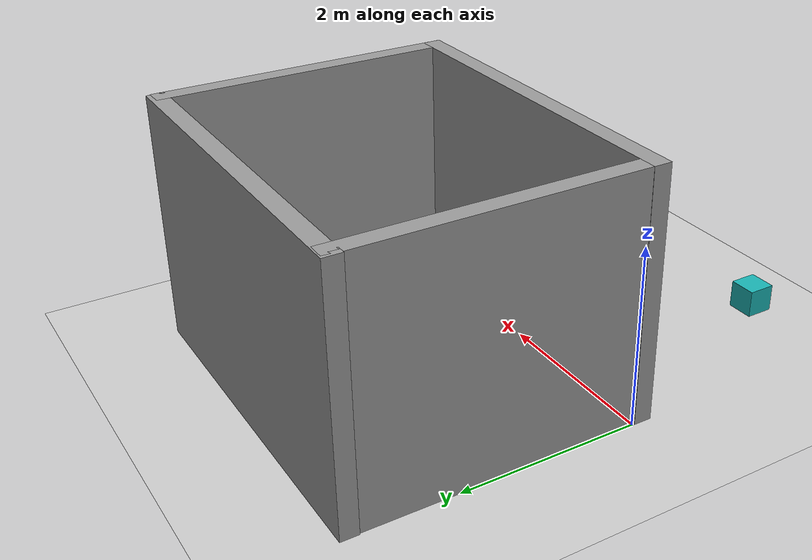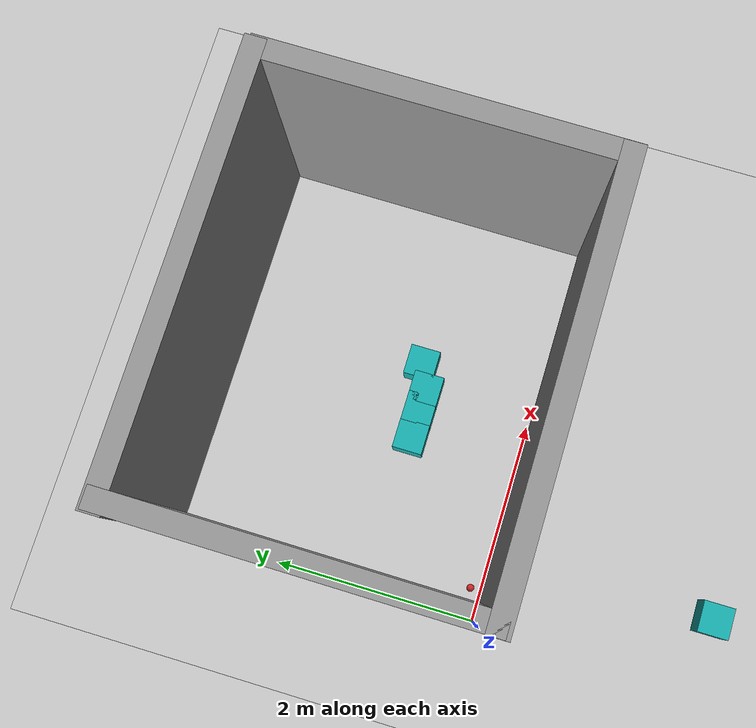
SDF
<sdf version="1.7">
 <world name="default">
  <scene><ambient>0.4 0.4 0.4 1</ambient><background>0.7 0.7 0.7 1</background><shadows>1</shadows></scene>
  <light name="sun" type="directional">
   <pose>0 0 10 0 -0 0</pose>
   <diffuse>0.8 0.8 0.8 1</diffuse>
   <specular>0.2 0.2 0.2 1</specular>
   <attenuation>
    <range>1000</range>
    <constant>0.9</constant>
    <linear>0.01</linear>
    <quadratic>0.001</quadratic>
   </attenuation>
   <direction>-0.5 0.1 -0.9</direction>
   <spot><inner_angle>0</inner_angle><outer_angle>0</outer_angle><falloff>0</falloff></spot>
  </light>
  <model name="ground_plane">
   <static>1</static>
   <link name="link">
    <collision name="collision">
     <geometry><plane><normal>0 0 1</normal><size>100 100</size></plane></geometry>
     <surface><friction><ode><mu>100</mu><mu2>50</mu2></ode></friction></surface>
    </collision>
    <visual name="visual">
     <cast_shadows>0</cast_shadows>
     <geometry><plane><normal>0 0 1</normal><size>100 100</size></plane></geometry>
     <material>
      <script><uri>file://media/materials/scripts/gazebo.material</uri><name>Gazebo/Grey</name></script>
     </material>
    </visual>
   </link>
  </model>
  <physics name="default_physics" default="0" type="ode">
   <real_time_update_rate>1000</real_time_update_rate>
   <max_step_size>0.001</max_step_size>
   <real_time_factor>1</real_time_factor>
   <ode>
    <solver>
     <type>quick</type>
     <iters>150</iters>
     <precon_iters>0</precon_iters>
     <sor>1.4</sor>
     <use_dynamic_moi_rescaling>1</use_dynamic_moi_rescaling>
    </solver>
    <constraints>
     <cfm>1e-05</cfm>
     <erp>0.2</erp>
     <contact_max_correcting_vel>2000</contact_max_correcting_vel>
     <contact_surface_layer>0.01</contact_surface_layer>
    </constraints>
   </ode>
  </physics>
  <gravity>0 0 -9.8</gravity>
  <magnetic_field>6e-06 2.3e-05 -4.2e-05</magnetic_field>
  <atmosphere type="adiabatic"/>
  <spherical_coordinates>
   <surface_model>EARTH_WGS84</surface_model>
   <latitude_deg>0</latitude_deg>
   <longitude_deg>0</longitude_deg>
   <elevation>0</elevation>
   <heading_deg>0</heading_deg>
  </spherical_coordinates>
  <audio><device>default</device></audio>
  <model name="target_0">
   <link name="link">
    <pose>0 0 0.0375 0 -0 0</pose>
    <inertial>
     <mass>0.1467</mass>
     <inertia>
      <ixx>8.25187e-05</ixx>
      <ixy>0</ixy>
      <ixz>0</ixz>
      <iyy>8.25187e-05</iyy>
      <iyz>0</iyz>
      <izz>8.25187e-05</izz>
     </inertia>
    </inertial>
    <velocity_decay><linear>0</linear><angular>0.005</angular></velocity_decay>
    <visual name="visual">
     <geometry><sphere><radius>0.0375</radius></sphere></geometry>
     <material>
      <script><uri>file://media/materials/scripts/gazebo.material</uri><name>Gazebo/Red</name></script>
      <shader type="pixel"/>
     </material>
    </visual>
    <collision name="collision">
     <geometry><sphere><radius>0.0375</radius></sphere></geometry>
     <surface>
      <friction>
       <ode><mu>1</mu><mu2>1</mu2><fdir1>0 0 0</fdir1><slip1>0</slip1><slip2>0</slip2></ode>
       <torsional>
        <coefficient>1</coefficient>
        <patch_radius>0</patch_radius>
        <surface_radius>0.01</surface_radius>
        <use_patch_radius>0</use_patch_radius>
        <ode><slip>0</slip></ode>
       </torsional>
      </friction>
      <bounce><restitution_coefficient>0</restitution_coefficient><threshold>1e+06</threshold></bounce>
      <contact>
       <collide_without_contact>0</collide_without_contact>
       <collide_without_contact_bitmask>1</collide_without_contact_bitmask>
       <collide_bitmask>1</collide_bitmask>
       <ode>
        <soft_cfm>0</soft_cfm>
        <soft_erp>0.2</soft_erp>
        <kp>100000</kp>
        <kd>100</kd>
        <max_vel>100</max_vel>
        <min_depth>0.001</min_depth>
       </ode>
       <bullet>
        <split_impulse>1</split_impulse>
        <split_impulse_penetration_threshold>-0.01</split_impulse_penetration_threshold>
        <soft_cfm>0</soft_cfm>
        <soft_erp>0.2</soft_erp>
        <kp>100000</kp>
        <kd>100</kd>
       </bullet>
      </contact>
     </surface>
    </collision>
   </link>
   <static>0</static>
   <pose>0.305469 0.103645 -0.001014 0 -0 0</pose>
  </model>
  <model name="grey_wall_4.1">
   <link name="link">
    <pose>0 0 1.4 0 -0 0</pose>
    <inertial>
     <mass>1</mass>
     <inertia><ixx>1</ixx><ixy>0</ixy><ixz>0</ixz><iyy>1</iyy><iyz>0</iyz><izz>1</izz></inertia>
    </inertial>
    <visual name="visual">
     <cast_shadows>0</cast_shadows>
     <geometry><box><size>4.1 0.2 2.8</size></box></geometry>
     <material>
      <script>
       <uri>model://grey_wall/materials/scripts</uri>
       <uri>model://grey_wall/materials/textures</uri>
       <name>vrc/grey_wall</name>
      </script>
      <shader type="pixel"><normal_map>__default__</normal_map></shader>
      <ambient>1 1 1 1</ambient>
      <diffuse>1 1 1 1</diffuse>
      <specular>0 0 0 1</specular>
      <emissive>0 0 0 1</emissive>
     </material>
    </visual>
    <collision name="collision">
     <geometry><box><size>4.1 0.2 2.8</size></box></geometry>
     <surface>
      <friction>
       <ode><mu>1</mu><mu2>1</mu2><fdir1>0 0 0</fdir1><slip1>0</slip1><slip2>0</slip2></ode>
       <torsional>
        <coefficient>1</coefficient>
        <patch_radius>0</patch_radius>
        <surface_radius>0</surface_radius>
        <use_patch_radius>1</use_patch_radius>
        <ode><slip>0</slip></ode>
       </torsional>
      </friction>
      <bounce><restitution_coefficient>0</restitution_coefficient><threshold>1e+06</threshold></bounce>
      <contact>
       <collide_without_contact>0</collide_without_contact>
       <collide_without_contact_bitmask>1</collide_without_contact_bitmask>
       <collide_bitmask>1</collide_bitmask>
       <ode>
        <soft_cfm>0</soft_cfm>
        <soft_erp>0.2</soft_erp>
        <kp>1e+13</kp>
        <kd>1</kd>
        <max_vel>0.01</max_vel>
        <min_depth>0</min_depth>
       </ode>
       <bullet>
        <split_impulse>1</split_impulse>
        <split_impulse_penetration_threshold>-0.01</split_impulse_penetration_threshold>
        <soft_cfm>0</soft_cfm>
        <soft_erp>0.2</soft_erp>
        <kp>1e+13</kp>
        <kd>1</kd>
       </bullet>
      </contact>
     </surface>
    </collision>
   </link>
   <static>1</static>
   <pose>2.04136 -0.120438 0 0 -0 0</pose>
  </model>
  <model name="grey_wall_3.4_clone">
   <link name="link">
    <pose>0 0 1.4 0 -0 0</pose>
    <inertial>
     <mass>1</mass>
     <inertia><ixx>1</ixx><ixy>0</ixy><ixz>0</ixz><iyy>1</iyy><iyz>0</iyz><izz>1</izz></inertia>
    </inertial>
    <visual name="visual">
     <cast_shadows>0</cast_shadows>
     <geometry><box><size>3.4 0.2 2.8</size></box></geometry>
     <material>
      <script>
       <uri>model://grey_wall/materials/scripts</uri>
       <uri>model://grey_wall/materials/textures</uri>
       <name>vrc/grey_wall</name>
      </script>
      <shader type="pixel"><normal_map>__default__</normal_map></shader>
      <ambient>1 1 1 1</ambient>
      <diffuse>1 1 1 1</diffuse>
      <specular>0 0 0 1</specular>
      <emissive>0 0 0 1</emissive>
     </material>
    </visual>
    <collision name="collision">
     <geometry><box><size>3.4 0.2 2.8</size></box></geometry>
     <surface>
      <friction>
       <ode><mu>1</mu><mu2>1</mu2><fdir1>0 0 0</fdir1><slip1>0</slip1><slip2>0</slip2></ode>
       <torsional>
        <coefficient>1</coefficient>
        <patch_radius>0</patch_radius>
        <surface_radius>0</surface_radius>
        <use_patch_radius>1</use_patch_radius>
        <ode><slip>0</slip></ode>
       </torsional>
      </friction>
      <bounce><restitution_coefficient>0</restitution_coefficient><threshold>1e+06</threshold></bounce>
      <contact>
       <collide_without_contact>0</collide_without_contact>
       <collide_without_contact_bitmask>1</collide_without_contact_bitmask>
       <collide_bitmask>1</collide_bitmask>
       <ode>
        <soft_cfm>0</soft_cfm>
        <soft_erp>0.2</soft_erp>
        <kp>1e+13</kp>
        <kd>1</kd>
        <max_vel>0.01</max_vel>
        <min_depth>0</min_depth>
       </ode>
       <bullet>
        <split_impulse>1</split_impulse>
        <split_impulse_penetration_threshold>-0.01</split_impulse_penetration_threshold>
        <soft_cfm>0</soft_cfm>
        <soft_erp>0.2</soft_erp>
        <kp>1e+13</kp>
        <kd>1</kd>
       </bullet>
      </contact>
     </surface>
    </collision>
   </link>
   <static>1</static>
   <pose>3.9994 1.48301 0 0 0 -1.57484</pose>
  </model>
  <model name="grey_wall_3.4_clone_0">
   <link name="link">
    <pose>0 0 1.4 0 -0 0</pose>
    <inertial>
     <mass>1</mass>
     <inertia><ixx>1</ixx><ixy>0</ixy><ixz>0</ixz><iyy>1</iyy><iyz>0</iyz><izz>1</izz></inertia>
    </inertial>
    <visual name="visual">
     <cast_shadows>0</cast_shadows>
     <geometry><box><size>3.4 0.2 2.8</size></box></geometry>
     <material>
      <script>
       <uri>model://grey_wall/materials/scripts</uri>
       <uri>model://grey_wall/materials/textures</uri>
       <name>vrc/grey_wall</name>
      </script>
      <shader type="pixel"><normal_map>__default__</normal_map></shader>
      <ambient>1 1 1 1</ambient>
      <diffuse>1 1 1 1</diffuse>
      <specular>0 0 0 1</specular>
      <emissive>0 0 0 1</emissive>
     </material>
    </visual>
    <collision name="collision">
     <geometry><box><size>3.4 0.2 2.8</size></box></geometry>
     <surface>
      <friction>
       <ode><mu>1</mu><mu2>1</mu2><fdir1>0 0 0</fdir1><slip1>0</slip1><slip2>0</slip2></ode>
       <torsional>
        <coefficient>1</coefficient>
        <patch_radius>0</patch_radius>
        <surface_radius>0</surface_radius>
        <use_patch_radius>1</use_patch_radius>
        <ode><slip>0</slip></ode>
       </torsional>
      </friction>
      <bounce><restitution_coefficient>0</restitution_coefficient><threshold>1e+06</threshold></bounce>
      <contact>
       <collide_without_contact>0</collide_without_contact>
       <collide_without_contact_bitmask>1</collide_without_contact_bitmask>
       <collide_bitmask>1</collide_bitmask>
       <ode>
        <soft_cfm>0</soft_cfm>
        <soft_erp>0.2</soft_erp>
        <kp>1e+13</kp>
        <kd>1</kd>
        <max_vel>0.01</max_vel>
        <min_depth>0</min_depth>
       </ode>
       <bullet>
        <split_impulse>1</split_impulse>
        <split_impulse_penetration_threshold>-0.01</split_impulse_penetration_threshold>
        <soft_cfm>0</soft_cfm>
        <soft_erp>0.2</soft_erp>
        <kp>1e+13</kp>
        <kd>1</kd>
       </bullet>
      </contact>
     </surface>
    </collision>
   </link>
   <static>1</static>
   <pose>0.100197 1.51529 0 0 0 -1.57484</pose>
  </model>
  <model name="grey_wall_4.1_clone">
   <link name="link">
    <pose>0 0 1.4 0 -0 0</pose>
    <inertial>
     <mass>1</mass>
     <inertia><ixx>1</ixx><ixy>0</ixy><ixz>0</ixz><iyy>1</iyy><iyz>0</iyz><izz>1</izz></inertia>
    </inertial>
    <visual name="visual">
     <cast_shadows>0</cast_shadows>
     <geometry><box><size>4.1 0.2 2.8</size></box></geometry>
     <material>
      <script>
       <uri>model://grey_wall/materials/scripts</uri>
       <uri>model://grey_wall/materials/textures</uri>
       <name>vrc/grey_wall</name>
      </script>
      <shader type="pixel"><normal_map>__default__</normal_map></shader>
      <ambient>1 1 1 1</ambient>
      <diffuse>1 1 1 1</diffuse>
      <specular>0 0 0 1</specular>
      <emissive>0 0 0 1</emissive>
     </material>
    </visual>
    <collision name="collision">
     <geometry><box><size>4.1 0.2 2.8</size></box></geometry>
     <surface>
      <friction>
       <ode><mu>1</mu><mu2>1</mu2><fdir1>0 0 0</fdir1><slip1>0</slip1><slip2>0</slip2></ode>
       <torsional>
        <coefficient>1</coefficient>
        <patch_radius>0</patch_radius>
        <surface_radius>0</surface_radius>
        <use_patch_radius>1</use_patch_radius>
        <ode><slip>0</slip></ode>
       </torsional>
      </friction>
      <bounce><restitution_coefficient>0</restitution_coefficient><threshold>1e+06</threshold></bounce>
      <contact>
       <collide_without_contact>0</collide_without_contact>
       <collide_without_contact_bitmask>1</collide_without_contact_bitmask>
       <collide_bitmask>1</collide_bitmask>
       <ode>
        <soft_cfm>0</soft_cfm>
        <soft_erp>0.2</soft_erp>
        <kp>1e+13</kp>
        <kd>1</kd>
        <max_vel>0.01</max_vel>
        <min_depth>0</min_depth>
       </ode>
       <bullet>
        <split_impulse>1</split_impulse>
        <split_impulse_penetration_threshold>-0.01</split_impulse_penetration_threshold>
        <soft_cfm>0</soft_cfm>
        <soft_erp>0.2</soft_erp>
        <kp>1e+13</kp>
        <kd>1</kd>
       </bullet>
      </contact>
     </surface>
    </collision>
   </link>
   <static>1</static>
   <pose>2.04168 3.13323 0 0 -0 0</pose>
  </model>
  <model name="unit_box_0.3">
   <link name="link">
    <inertial>
     <mass>1</mass>
     <inertia>
      <ixx>0.166667</ixx>
      <ixy>0</ixy>
      <ixz>0</ixz>
      <iyy>0.166667</iyy>
      <iyz>0</iyz>
      <izz>0.166667</izz>
     </inertia>
    </inertial>
    <visual name="visual">
     <geometry><box><size>0.3 0.3 0.3</size></box></geometry>
     <material>
      <script><name>Gazebo/Grey</name><uri>file://media/materials/scripts/gazebo.material</uri></script>
      <shader type="pixel"><normal_map>__default__</normal_map></shader>
      <ambient>0.1 0.7 0.7 1</ambient>
      <diffuse>0.7 0.7 0.7 1</diffuse>
      <specular>0.01 0.01 0.01 1</specular>
      <emissive>0 0 0 1</emissive>
     </material>
    </visual>
    <collision name="collision">
     <geometry><box><size>0.3 0.3 0.3</size></box></geometry>
     <surface>
      <friction>
       <ode><mu>1</mu><mu2>1</mu2><fdir1>0 0 0</fdir1><slip1>0</slip1><slip2>0</slip2></ode>
       <torsional>
        <coefficient>1</coefficient>
        <patch_radius>0</patch_radius>
        <surface_radius>0</surface_radius>
        <use_patch_radius>1</use_patch_radius>
        <ode><slip>0</slip></ode>
       </torsional>
      </friction>
      <bounce><restitution_coefficient>0</restitution_coefficient><threshold>1e+06</threshold></bounce>
      <contact>
       <collide_without_contact>0</collide_without_contact>
       <collide_without_contact_bitmask>1</collide_without_contact_bitmask>
       <collide_bitmask>1</collide_bitmask>
       <ode>
        <soft_cfm>0</soft_cfm>
        <soft_erp>0.2</soft_erp>
        <kp>1e+13</kp>
        <kd>1</kd>
        <max_vel>0.01</max_vel>
        <min_depth>0</min_depth>
       </ode>
       <bullet>
        <split_impulse>1</split_impulse>
        <split_impulse_penetration_threshold>-0.01</split_impulse_penetration_threshold>
        <soft_cfm>0</soft_cfm>
        <soft_erp>0.2</soft_erp>
        <kp>1e+13</kp>
        <kd>1</kd>
       </bullet>
      </contact>
     </surface>
    </collision>
   </link>
   <static>0</static>
   <pose>0.671022 -2.15931 0.5 0 -0 0</pose>
  </model>
  <model name="unit_box_0.3_clone">
   <link name="link">
    <inertial>
     <mass>1</mass>
     <inertia>
      <ixx>0.166667</ixx>
      <ixy>0</ixy>
      <ixz>0</ixz>
      <iyy>0.166667</iyy>
      <iyz>0</iyz>
      <izz>0.166667</izz>
     </inertia>
    </inertial>
    <visual name="visual">
     <geometry><box><size>0.3 0.3 0.3</size></box></geometry>
     <material>
      <script><name>Gazebo/Grey</name><uri>file://media/materials/scripts/gazebo.material</uri></script>
      <shader type="pixel"><normal_map>__default__</normal_map></shader>
      <ambient>0.1 0.7 0.7 1</ambient>
      <diffuse>0.7 0.7 0.7 1</diffuse>
      <specular>0.01 0.01 0.01 1</specular>
      <emissive>0 0 0 1</emissive>
     </material>
    </visual>
    <collision name="collision">
     <geometry><box><size>0.3 0.3 0.3</size></box></geometry>
     <surface>
      <friction>
       <ode><mu>1</mu><mu2>1</mu2><fdir1>0 0 0</fdir1><slip1>0</slip1><slip2>0</slip2></ode>
       <torsional>
        <coefficient>1</coefficient>
        <patch_radius>0</patch_radius>
        <surface_radius>0</surface_radius>
        <use_patch_radius>1</use_patch_radius>
        <ode><slip>0</slip></ode>
       </torsional>
      </friction>
      <bounce><restitution_coefficient>0</restitution_coefficient><threshold>1e+06</threshold></bounce>
      <contact>
       <collide_without_contact>0</collide_without_contact>
       <collide_without_contact_bitmask>1</collide_without_contact_bitmask>
       <collide_bitmask>1</collide_bitmask>
       <ode>
        <soft_cfm>0</soft_cfm>
        <soft_erp>0.2</soft_erp>
        <kp>1e+13</kp>
        <kd>1</kd>
        <max_vel>0.01</max_vel>
        <min_depth>0</min_depth>
       </ode>
       <bullet>
        <split_impulse>1</split_impulse>
        <split_impulse_penetration_threshold>-0.01</split_impulse_penetration_threshold>
        <soft_cfm>0</soft_cfm>
        <soft_erp>0.2</soft_erp>
        <kp>1e+13</kp>
        <kd>1</kd>
       </bullet>
      </contact>
     </surface>
    </collision>
   </link>
   <static>0</static>
   <pose>1.55226 1.08746 0.149099 0 -0 0</pose>
  </model>
  <model name="unit_box_0.3_clone_clone">
   <link name="link">
    <inertial>
     <mass>1</mass>
     <inertia>
      <ixx>0.166667</ixx>
      <ixy>0</ixy>
      <ixz>0</ixz>
      <iyy>0.166667</iyy>
      <iyz>0</iyz>
      <izz>0.166667</izz>
     </inertia>
    </inertial>
    <visual name="visual">
     <geometry><box><size>0.3 0.3 0.3</size></box></geometry>
     <material>
      <script><name>Gazebo/Grey</name><uri>file://media/materials/scripts/gazebo.material</uri></script>
      <shader type="pixel"><normal_map>__default__</normal_map></shader>
      <ambient>0.1 0.7 0.7 1</ambient>
      <diffuse>0.7 0.7 0.7 1</diffuse>
      <specular>0.01 0.01 0.01 1</specular>
      <emissive>0 0 0 1</emissive>
     </material>
    </visual>
    <collision name="collision">
     <geometry><box><size>0.3 0.3 0.3</size></box></geometry>
     <surface>
      <friction>
       <ode><mu>1</mu><mu2>1</mu2><fdir1>0 0 0</fdir1><slip1>0</slip1><slip2>0</slip2></ode>
       <torsional>
        <coefficient>1</coefficient>
        <patch_radius>0</patch_radius>
        <surface_radius>0</surface_radius>
        <use_patch_radius>1</use_patch_radius>
        <ode><slip>0</slip></ode>
       </torsional>
      </friction>
      <bounce><restitution_coefficient>0</restitution_coefficient><threshold>1e+06</threshold></bounce>
      <contact>
       <collide_without_contact>0</collide_without_contact>
       <collide_without_contact_bitmask>1</collide_without_contact_bitmask>
       <collide_bitmask>1</collide_bitmask>
       <ode>
        <soft_cfm>0</soft_cfm>
        <soft_erp>0.2</soft_erp>
        <kp>1e+13</kp>
        <kd>1</kd>
        <max_vel>0.01</max_vel>
        <min_depth>0</min_depth>
       </ode>
       <bullet>
        <split_impulse>1</split_impulse>
        <split_impulse_penetration_threshold>-0.01</split_impulse_penetration_threshold>
        <soft_cfm>0</soft_cfm>
        <soft_erp>0.2</soft_erp>
        <kp>1e+13</kp>
        <kd>1</kd>
       </bullet>
      </contact>
     </surface>
    </collision>
   </link>
   <static>0</static>
   <pose>1.84047 1.08616 0.149099 0 -0 0</pose>
  </model>
  <model name="unit_box_0.3_clone_clone_0">
   <link name="link">
    <inertial>
     <mass>1</mass>
     <inertia>
      <ixx>0.166667</ixx>
      <ixy>0</ixy>
      <ixz>0</ixz>
      <iyy>0.166667</iyy>
      <iyz>0</iyz>
      <izz>0.166667</izz>
     </inertia>
    </inertial>
    <visual name="visual">
     <geometry><box><size>0.3 0.3 0.3</size></box></geometry>
     <material>
      <script><name>Gazebo/Grey</name><uri>file://media/materials/scripts/gazebo.material</uri></script>
      <shader type="pixel"><normal_map>__default__</normal_map></shader>
      <ambient>0.1 0.7 0.7 1</ambient>
      <diffuse>0.7 0.7 0.7 1</diffuse>
      <specular>0.01 0.01 0.01 1</specular>
      <emissive>0 0 0 1</emissive>
     </material>
    </visual>
    <collision name="collision">
     <geometry><box><size>0.3 0.3 0.3</size></box></geometry>
     <surface>
      <friction>
       <ode><mu>1</mu><mu2>1</mu2><fdir1>0 0 0</fdir1><slip1>0</slip1><slip2>0</slip2></ode>
       <torsional>
        <coefficient>1</coefficient>
        <patch_radius>0</patch_radius>
        <surface_radius>0</surface_radius>
        <use_patch_radius>1</use_patch_radius>
        <ode><slip>0</slip></ode>
       </torsional>
      </friction>
      <bounce><restitution_coefficient>0</restitution_coefficient><threshold>1e+06</threshold></bounce>
      <contact>
       <collide_without_contact>0</collide_without_contact>
       <collide_without_contact_bitmask>1</collide_without_contact_bitmask>
       <collide_bitmask>1</collide_bitmask>
       <ode>
        <soft_cfm>0</soft_cfm>
        <soft_erp>0.2</soft_erp>
        <kp>1e+13</kp>
        <kd>1</kd>
        <max_vel>0.01</max_vel>
        <min_depth>0</min_depth>
       </ode>
       <bullet>
        <split_impulse>1</split_impulse>
        <split_impulse_penetration_threshold>-0.01</split_impulse_penetration_threshold>
        <soft_cfm>0</soft_cfm>
        <soft_erp>0.2</soft_erp>
        <kp>1e+13</kp>
        <kd>1</kd>
       </bullet>
      </contact>
     </surface>
    </collision>
   </link>
   <static>0</static>
   <pose>2.05442 1.08616 0.149099 0 -0 0</pose>
  </model>
  <model name="unit_box_0.3_clone_clone_1">
   <link name="link">
    <inertial>
     <mass>1</mass>
     <inertia>
      <ixx>0.166667</ixx>
      <ixy>0</ixy>
      <ixz>0</ixz>
      <iyy>0.166667</iyy>
      <iyz>0</iyz>
      <izz>0.166667</izz>
     </inertia>
    </inertial>
    <visual name="visual">
     <geometry><box><size>0.3 0.3 0.3</size></box></geometry>
     <material>
      <script><name>Gazebo/Grey</name><uri>file://media/materials/scripts/gazebo.material</uri></script>
      <shader type="pixel"><normal_map>__default__</normal_map></shader>
      <ambient>0.1 0.7 0.7 1</ambient>
      <diffuse>0.7 0.7 0.7 1</diffuse>
      <specular>0.01 0.01 0.01 1</specular>
      <emissive>0 0 0 1</emissive>
     </material>
    </visual>
    <collision name="collision">
     <geometry><box><size>0.3 0.3 0.3</size></box></geometry>
     <surface>
      <friction>
       <ode><mu>1</mu><mu2>1</mu2><fdir1>0 0 0</fdir1><slip1>0</slip1><slip2>0</slip2></ode>
       <torsional>
        <coefficient>1</coefficient>
        <patch_radius>0</patch_radius>
        <surface_radius>0</surface_radius>
        <use_patch_radius>1</use_patch_radius>
        <ode><slip>0</slip></ode>
       </torsional>
      </friction>
      <bounce><restitution_coefficient>0</restitution_coefficient><threshold>1e+06</threshold></bounce>
      <contact>
       <collide_without_contact>0</collide_without_contact>
       <collide_without_contact_bitmask>1</collide_without_contact_bitmask>
       <collide_bitmask>1</collide_bitmask>
       <ode>
        <soft_cfm>0</soft_cfm>
        <soft_erp>0.2</soft_erp>
        <kp>1e+13</kp>
        <kd>1</kd>
        <max_vel>0.01</max_vel>
        <min_depth>0</min_depth>
       </ode>
       <bullet>
        <split_impulse>1</split_impulse>
        <split_impulse_penetration_threshold>-0.01</split_impulse_penetration_threshold>
        <soft_cfm>0</soft_cfm>
        <soft_erp>0.2</soft_erp>
        <kp>1e+13</kp>
        <kd>1</kd>
       </bullet>
      </contact>
     </surface>
    </collision>
   </link>
   <static>0</static>
   <pose>2.29613 1.196 0.149099 0 -0 0</pose>
  </model>
 </world>
</sdf>
